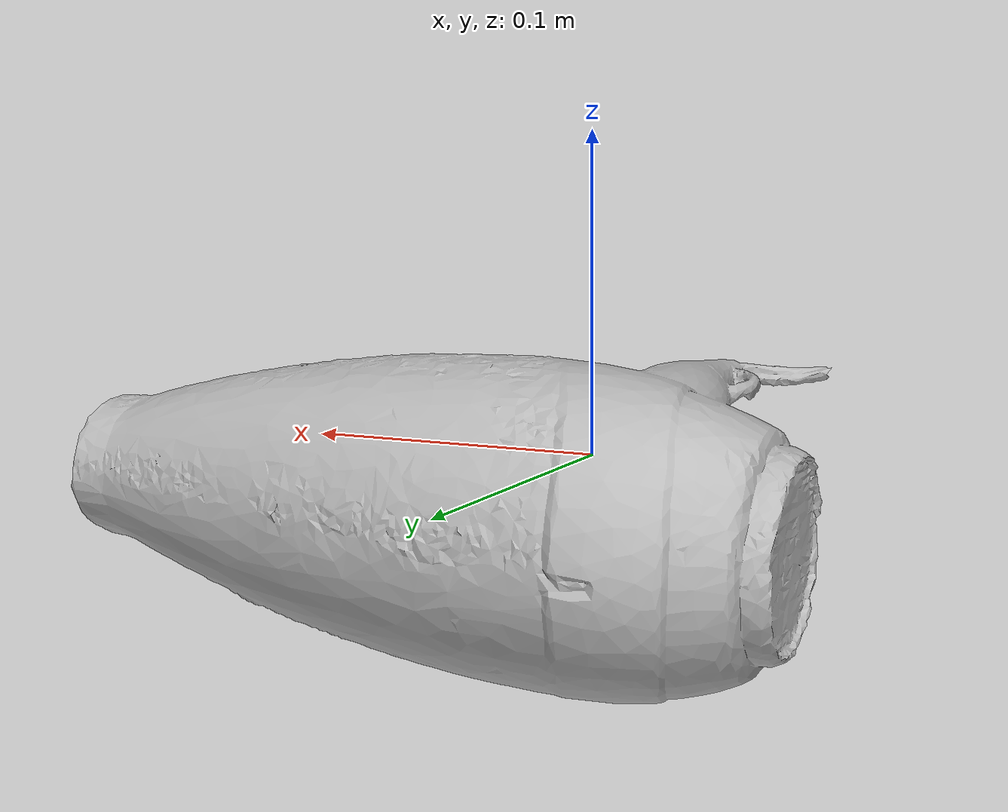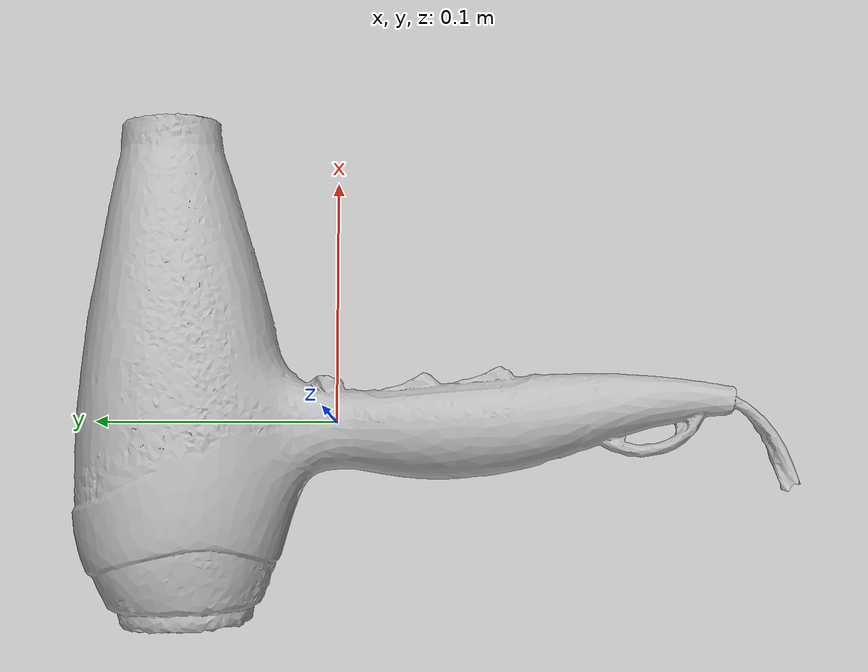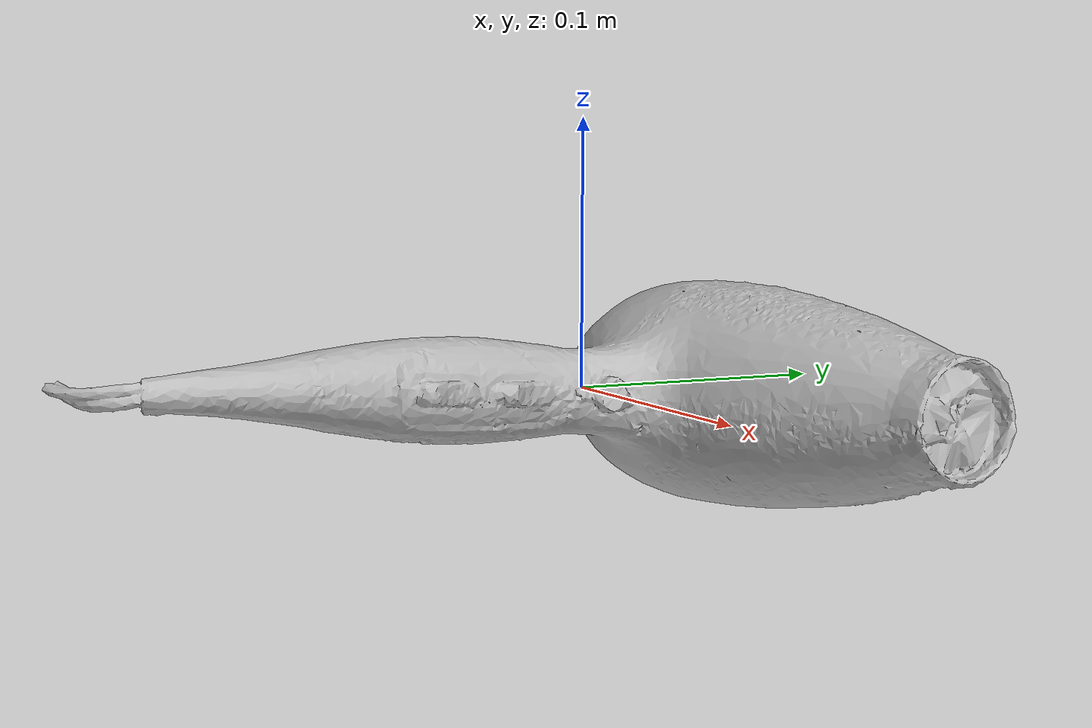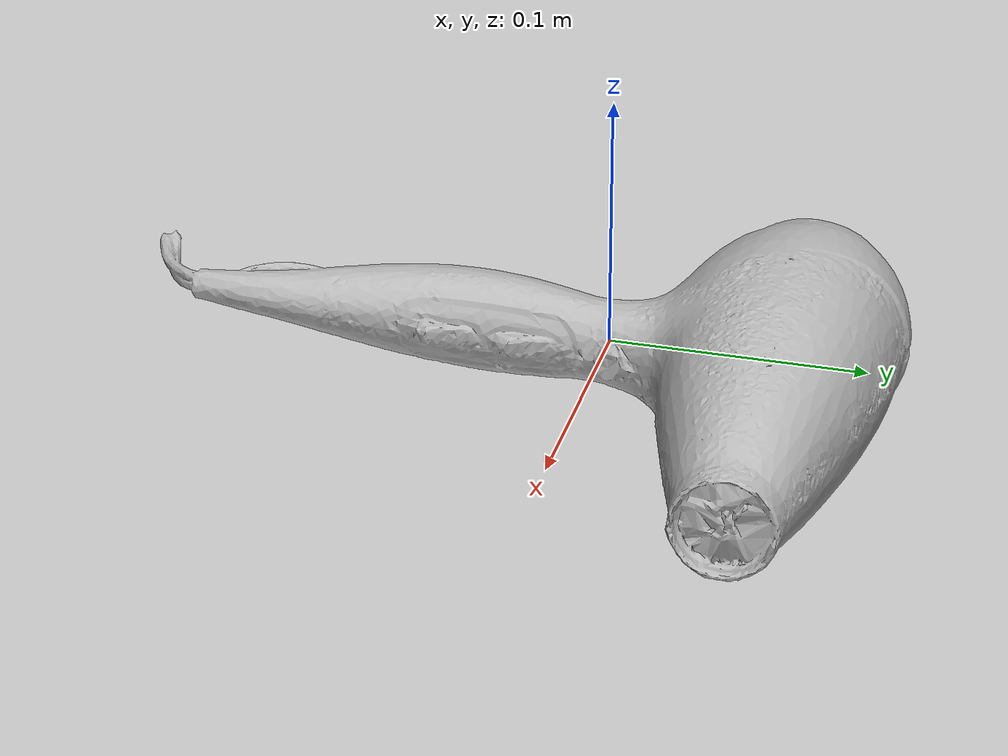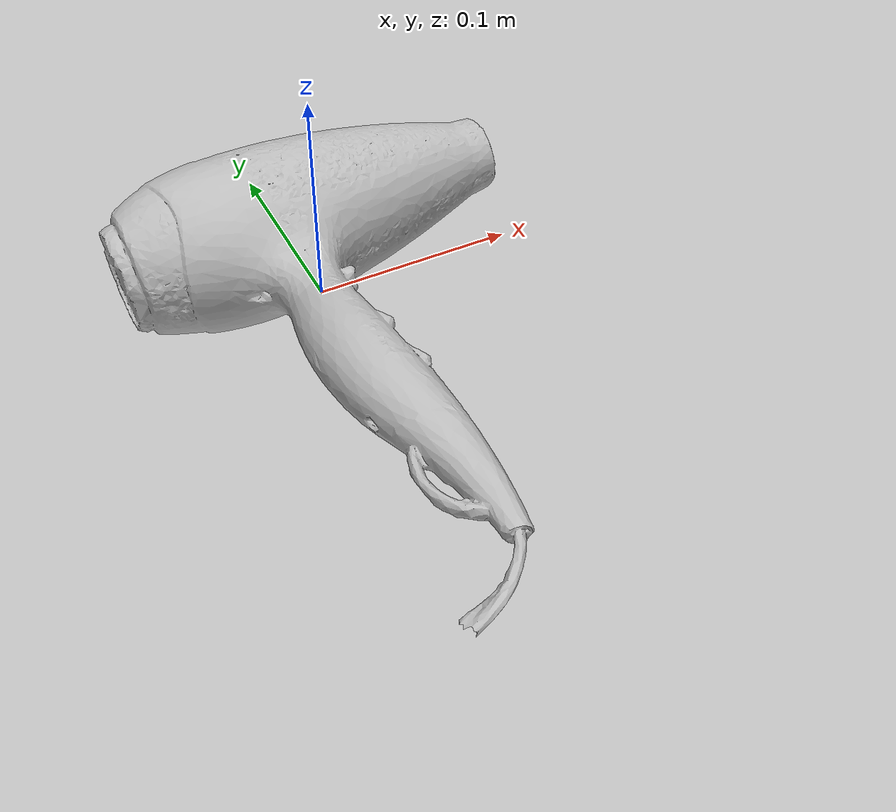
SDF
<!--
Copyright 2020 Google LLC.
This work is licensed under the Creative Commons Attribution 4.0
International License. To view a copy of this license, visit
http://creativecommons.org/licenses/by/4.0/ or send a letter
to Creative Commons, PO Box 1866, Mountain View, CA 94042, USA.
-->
<?xml version="1.0" ?>
<sdf version="1.6">
  <model name="Remington_TStudio_Hair_Dryer">
    <link name="link_0">
      <visual name="visual">
        <geometry>
          <mesh>
            <uri>meshes/model.obj</uri>
          </mesh>
        </geometry>
      </visual>
      <collision name="collision_0">
        <geometry>
          <mesh>
            <uri>meshes/model.obj</uri>
          </mesh>
        </geometry>
      </collision>
    </link>
  </model>
</sdf>
